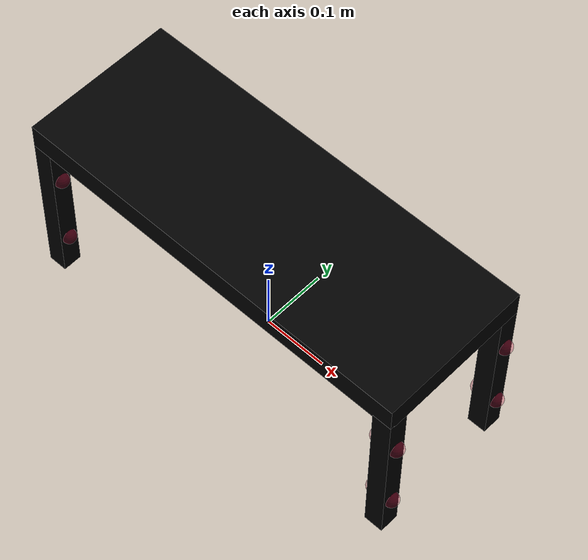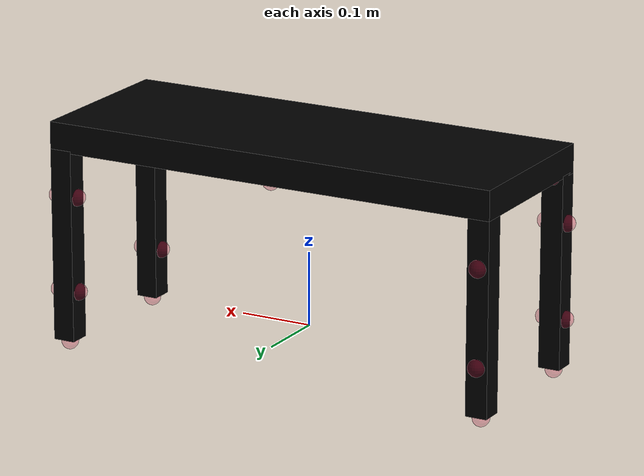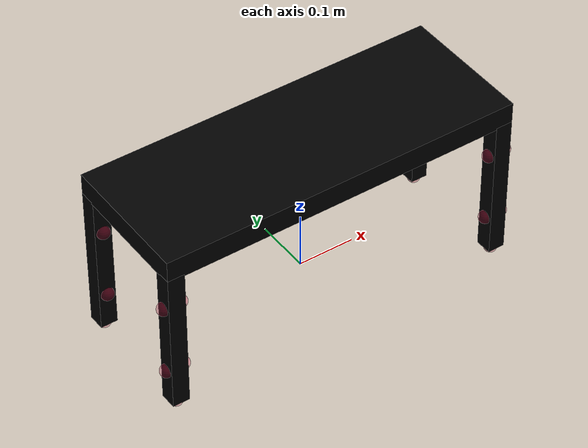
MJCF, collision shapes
<mujoco model="table_lack_0825">
  <custom>
    <numeric data="0.0   0.21 0.01497 0.5 -0.5 0.5 -0.5" name="0_part0_initpos" />
    <numeric data="-0.37 0.31 0.01497 0.499854 0.499854 0.500146 0.500146" name="1_part1_initpos" />
    <numeric data="-0.37 0.21 0.01497 0.500129 0.500129 0.499871 0.499871" name="2_part2_initpos" />
    <numeric data="0.0   0.31 0.01497 0.5 -0.5 0.5 -0.5" name="3_part3_initpos" />
    <numeric data="-0.19 0.00  0.019527 0 1.0 0 0" name="4_part4_initpos" />
  </custom>
  <asset>
    <mesh file="table_lack_0825/leg1.stl" name="part0" scale="0.02 0.02 0.02" />
    <mesh file="table_lack_0825/leg2.stl" name="part1" scale="0.02 0.02 0.02" />
    <mesh file="table_lack_0825/leg3.stl" name="part2" scale="0.02 0.02 0.02" />
    <mesh file="table_lack_0825/leg4.stl" name="part3" scale="0.02 0.02 0.02" />
    <mesh file="table_lack_0825/table.stl" name="part4" scale="0.015 0.015 0.02" />
    <texture file="../textures/light-wood.png" name="tex-light-wood" type="2d" />
    <material name="pencil-wood" reflectance="0.5" texrepeat="20 20" texture="tex-light-wood" texuniform="true" />
  </asset>
  <equality>
    <weld active="false" body1="0_part0" body2="4_part4" solimp="1 1 0.5" solref="0.01 0.3" />
    <weld active="false" body1="2_part2" body2="4_part4" solimp="1 1 0.5" solref="0.01 0.3" />
    <weld active="false" body1="3_part3" body2="4_part4" solimp="1 1 0.5" solref="0.01 0.3" />
    <weld active="false" body1="1_part1" body2="4_part4" solimp="1 1 0.5" solref="0.01 0.3" />
  </equality>
  <worldbody>
    <body name="4_part4" pos="0.0 0.0 0.2433" quat="1 0 0 0">
      <geom conaffinity="0" contype="0" density="0" material="pencil-wood" mesh="part4" name="4_part4_geom" pos="0 0 0" rgba="0.82 0.71 0.55 1" solref="0.001 1" type="mesh" />
      <geom density="50" name="noviz_collision_4_part4_0" pos="0 0 0" quat="1 0 0 0" rgba="0 0 0 0" size="0.32 0.12 0.02" solref="0.001 1" type="box" />

      <site group="0" name="table-leg,0,90,180,270,conn_site1" pos="-0.305 -0.095 -0.02" rgba="0.9019 0.0980 0.2941 0.3" size="0.0116" />
      <site group="0" name="table-leg,0,90,180,270,conn_site2" pos="-0.305 0.095 -0.02" rgba="0.9019 0.0980 0.2941 0.3" size="0.0116" />
      <site group="0" name="table-leg,0,90,180,270,conn_site3" pos="0.305 -0.095 -0.02" rgba="0.9019 0.0980 0.2941 0.3" size="0.0116" />
      <site group="0" name="table-leg,0,90,180,270,conn_site4" pos="0.305 0.095 -0.02" rgba="0.9019 0.0980 0.2941 0.3" size="0.0116" />
      <site group="0" name="table-leg,0,90,180,270,conn_site5_fake1" pos="0.0 -0.1 -0.02" rgba="0.9019 0.0980 0.2941 0.3" size="0.0116" />
      <site group="0" name="table-leg,0,90,180,270,conn_site6_fake2" pos="0.0 0.1 -0.02" rgba="0.9019 0.0980 0.2941 0.3" size="0.0116" />

      <site name="4_part4_corner_site1" pos="-0.385 -0.140 -0.023" rgba="0 0 0 0" size="0.005" />
      <site name="4_part4_corner_site2" pos="-0.385 0.140 -0.023" rgba="0 0 0 0" size="0.005" />
      <site name="4_part4_corner_site3" pos="0.385 -0.140 -0.023" rgba="0 0 0 0" size="0.005" />
      <site name="4_part4_corner_site4" pos="0.385 0.140 -0.023" rgba="0 0 0 0" size="0.005" />
      <site name="4_part4_corner_site5" pos="-0.385 -0.140 0.0233" rgba="0 0 0 0" size="0.005" />
      <site name="4_part4_corner_site6" pos="-0.385 0.140 0.0233" rgba="0 0 0 0" size="0.005" />
      <site name="4_part4_corner_site7" pos="0.385 -0.140 0.0233" rgba="0 0 0 0" size="0.005" />
      <site name="4_part4_corner_site8" pos="0.385 0.140 0.0233" rgba="0 0 0 0" size="0.005" />
      <site name="4_part4_bottom_site" pos="0.0 0.0 -0.0" rgba="0 0 0 0" size="0.0066" />
      <site name="4_part4_top_site" pos="0.0 0.0 0.02" rgba="0 0 0 0" size="0.0066" />
      <site name="4_part4_horizontal_radius_site" pos="0.0 0.0 0.0" rgba="0 0 0 0" size="0.18" />
    </body>
    <body name="0_part0" pos="-0.305 -0.105 0.095">
      <geom density="5" name="noviz_collision_0_part0_0" pos="0 0 0" quat="1 0 0 0" rgba="0 0 0 0" size="0.015 0.015 0.13125" solref="0.001 1" type="box" />
      <geom conaffinity="0" contype="0" density="0" material="pencil-wood" mesh="part0" name="0_part0_mesh" pos="0 0 0" rgba="0.82 0.71 0.55 1" solref="0.001 1" type="mesh" />
      <site group="1" name="0_part0_ltgt_site0" pos="-0.02 0 0" rgba="0 0 0 0" size="0.01 0.01 0.01" type="sphere" />
      <site group="1" name="0_part0_rtgt_site0" pos="0.02 0 0" rgba="0 0 0 0" size="0.01 0.01 0.01" type="sphere" />
      <site group="0" name="leg-table,0,90,180,270,conn_site1" pos="0.0 0.0 0.1355" rgba="0.9019 0.0980 0.2941 0.3" size="0.0116" />
      <site group="0" name="leg-table,0,90,180,270,conn_site1_fake1" pos="0.0 0.0 -0.1355" rgba="0.9019 0.0980 0.2941 0.3" size="0.0116" />
      <site group="0" name="leg-table,0,90,180,270,conn_site1_fake2" pos="0.015 0.0 -0.065" rgba="0.9019 0.0980 0.2941 0.3" size="0.0116" />
      <site group="0" name="leg-table,0,90,180,270,conn_site1_fake3" pos="0.015 0.0 0.065" rgba="0.9019 0.0980 0.2941 0.3" size="0.0116" />
      <site group="0" name="leg-table,0,90,180,270,conn_site1_fake4" pos="-0.015 0.0 -0.065" rgba="0.9019 0.0980 0.2941 0.3" size="0.0116" />
      <site group="0" name="leg-table,0,90,180,270,conn_site1_fake5" pos="-0.015 0.0 0.065" rgba="0.9019 0.0980 0.2941 0.3" size="0.0116" />

      <site name="0_part0_bottom_site" pos="0.0 0.0 -0.133" rgba="0 0 0 0" size="0.0116" />
      <site name="0_part0_top_site" pos="0.0 0.0 0.1333" rgba="0 0 0 0" size="0.0116" />
      <site name="0_part0_corner_site1" pos="0.02 0.02 -0.133" rgba="0 0 0 0" size="0.005" />
      <site name="0_part0_corner_site2" pos="0.02 -0.02 -0.133" rgba="0 0 0 0" size="0.005" />
      <site name="0_part0_corner_site3" pos="-0.02 0.02 -0.133" rgba="0 0 0 0" size="0.005" />
      <site name="0_part0_corner_site4" pos="-0.02 -0.02 -0.133" rgba="0 0 0 0" size="0.005" />
      <site name="0_part0_corner_site5" pos="0.02 0.02 0.1333" rgba="0 0 0 0" size="0.005" />
      <site name="0_part0_corner_site6" pos="0.02 -0.02 0.1333" rgba="0 0 0 0" size="0.005" />
      <site name="0_part0_corner_site7" pos="-0.02 0.02 0.1333" rgba="0 0 0 0" size="0.005" />
      <site name="0_part0_corner_site8" pos="-0.02 -0.02 0.1333" rgba="0 0 0 0" size="0.005" />
      <site name="0_part0_horizontal_radius_site" pos="0.0 0.0 0.0" rgba="0 0 0 0" size="0.02" />
    </body>
    <body name="1_part1" pos="-0.305 0.105 0.095" quat="-0.7 0 0 0.7">
      <geom conaffinity="0" contype="0" density="0" material="pencil-wood" mesh="part1" name="1_part1_mesh" pos="0 0 0" rgba="0.82 0.71 0.55 1" solref="0.001 1" type="mesh" />
      <geom density="5" name="noviz_collision_1_part1_0" pos="0 0 0" quat="1 0 0 0" rgba="0 0 0 0" size="0.015 0.015 0.13125" solref="0.001 1" type="box" />
      <site group="1" name="1_part1_ltgt_site0" pos="-0.02 0 0" rgba="0 0 0 0" size="0.01 0.01 0.01" type="sphere" />
      <site group="1" name="1_part1_rtgt_site0" pos="0.02 0 0" rgba="0 0 0 0" size="0.01 0.01 0.01" type="sphere" />
      <site group="0" name="leg-table,0,90,180,270,conn_site2" pos="0.0 0.0 0.13125" rgba="0.9019 0.0980 0.2941 0.3" size="0.0116" />
      <site group="0" name="leg-table,0,90,180,270,conn_site2_fake1" pos="0.0 0.0 -0.1355" rgba="0.9019 0.0980 0.2941 0.3" size="0.0116" />
      <site group="0" name="leg-table,0,90,180,270,conn_site2_fake2" pos="0.015 0.0 -0.065" rgba="0.9019 0.0980 0.2941 0.3" size="0.0116" />
      <site group="0" name="leg-table,0,90,180,270,conn_site2_fake3" pos="0.015 0.0 0.065" rgba="0.9019 0.0980 0.2941 0.3" size="0.0116" />
      <site group="0" name="leg-table,0,90,180,270,conn_site2_fake4" pos="-0.015 0.0 -0.065" rgba="0.9019 0.0980 0.2941 0.3" size="0.0116" />
      <site group="0" name="leg-table,0,90,180,270,conn_site2_fake5" pos="-0.015 0.0 0.065" rgba="0.9019 0.0980 0.2941 0.3" size="0.0116" />
      <site name="1_part1_bottom_site" pos="0.0 0.0 -0.133" rgba="0 0 0 0" size="0.0116" />
      <site name="1_part1_top_site" pos="0.0 0.0 0.1333" rgba="0 0 0 0" size="0.0116" />
      <site name="1_part1_corner_site1" pos="0.02 0.02 -0.133" rgba="0 0 0 0" size="0.005" />
      <site name="1_part1_corner_site2" pos="0.02 -0.02 -0.133" rgba="0 0 0 0" size="0.005" />
      <site name="1_part1_corner_site3" pos="-0.02 0.02 -0.133" rgba="0 0 0 0" size="0.005" />
      <site name="1_part1_corner_site4" pos="-0.02 -0.02 -0.133" rgba="0 0 0 0" size="0.005" />
      <site name="1_part1_corner_site5" pos="0.02 0.02 0.1333" rgba="0 0 0 0" size="0.005" />
      <site name="1_part1_corner_site6" pos="0.02 -0.02 0.1333" rgba="0 0 0 0" size="0.005" />
      <site name="1_part1_corner_site7" pos="-0.02 0.02 0.1333" rgba="0 0 0 0" size="0.005" />
      <site name="1_part1_corner_site8" pos="-0.02 -0.02 0.1333" rgba="0 0 0 0" size="0.005" />
      <site name="1_part1_horizontal_radius_site" pos="0.0 0.0 0.0" rgba="0 0 0 0" size="0.02" />
    </body>
    <body name="2_part2" pos="0.305 -0.105 0.095" quat="1 0 0 0">
      <geom conaffinity="0" contype="0" density="0" material="pencil-wood" mesh="part2" name="2_part2_mesh" pos="0 0 0" rgba="0.82 0.71 0.55 1" solref="0.001 1" type="mesh" />
      <geom density="5" name="noviz_collision_2_part2_0" pos="0 0 0" quat="1 0 0 0" rgba="0 0 0 0" size="0.015 0.015 0.13125" solref="0.001 1" type="box" />
      <site group="1" name="2_part2_rtgt_site0" pos="-0.02 0 0" rgba="0 0 0 0" size="0.01 0.01 0.01" type="sphere" />
      <site group="1" name="2_part2_ltgt_site0" pos="0.02 0 0" rgba="0 0 0 0" size="0.01 0.01 0.01" type="sphere" />
      <site group="0" name="leg-table,0,90,180,270,conn_site3" pos="0.0 0.0 0.13125" rgba="0.9019 0.0980 0.2941 0.3" size="0.0116" />
      <site group="0" name="leg-table,0,90,180,270,conn_site3_fake1" pos="0.0 0.0 -0.1355" rgba="0.9019 0.0980 0.2941 0.3" size="0.0116" />
      <site group="0" name="leg-table,0,90,180,270,conn_site3_fake2" pos="0.015 0.0 -0.065" rgba="0.9019 0.0980 0.2941 0.3" size="0.0116" />
      <site group="0" name="leg-table,0,90,180,270,conn_site3_fake3" pos="0.015 0.0 0.065" rgba="0.9019 0.0980 0.2941 0.3" size="0.0116" />
      <site group="0" name="leg-table,0,90,180,270,conn_site3_fake4" pos="-0.015 0.0 -0.065" rgba="0.9019 0.0980 0.2941 0.3" size="0.0116" />
      <site group="0" name="leg-table,0,90,180,270,conn_site3_fake5" pos="-0.015 0.0 0.065" rgba="0.9019 0.0980 0.2941 0.3" size="0.0116" />
      <site name="2_part2_bottom_site" pos="0.0 0.0 -0.133" rgba="0 0 0 0" size="0.0116" />
      <site name="2_part2_top_site" pos="0.0 0.0 0.1333" rgba="0 0 0 0" size="0.0116" />
      <site name="2_part2_corner_site1" pos="0.02 0.02 -0.133" rgba="0 0 0 0" size="0.005" />
      <site name="2_part2_corner_site2" pos="0.02 -0.02 -0.133" rgba="0 0 0 0" size="0.005" />
      <site name="2_part2_corner_site3" pos="-0.02 0.02 -0.133" rgba="0 0 0 0" size="0.005" />
      <site name="2_part2_corner_site4" pos="-0.02 -0.02 -0.133" rgba="0 0 0 0" size="0.005" />
      <site name="2_part2_corner_site5" pos="0.02 0.02 0.1333" rgba="0 0 0 0" size="0.005" />
      <site name="2_part2_corner_site6" pos="0.02 -0.02 0.1333" rgba="0 0 0 0" size="0.005" />
      <site name="2_part2_corner_site7" pos="-0.02 0.02 0.1333" rgba="0 0 0 0" size="0.005" />
      <site name="2_part2_corner_site8" pos="-0.02 -0.02 0.1333" rgba="0 0 0 0" size="0.005" />
      <site name="2_part2_horizontal_radius_site" pos="0.0 0.0 0.0" rgba="0 0 0 0" size="0.02" />
    </body>
    <body name="3_part3" pos="0.305 0.105 0.095" quat="1 0 0 0">
      <geom conaffinity="0" contype="0" density="0" material="pencil-wood" mesh="part3" name="3_part3_mesh" pos="0 0 0" rgba="0.82 0.71 0.55 1" solref="0.001 1" type="mesh" />
      <geom density="5" name="noviz_collision_3_part3_0" pos="0 0 0" quat="1 0 0 0" rgba="0 0 0 0" size="0.015 0.015 0.13125" solref="0.001 1" type="box" />
      <site group="1" name="3_part3_ltgt_site0" pos="-0.02 0 0" rgba="0 0 0 0" size="0.01 0.01 0.01" type="sphere" />
      <site group="1" name="3_part3_rtgt_site0" pos="0.02 0 0" rgba="0 0 0 0" size="0.01 0.01 0.01" type="sphere" />
      <site group="0" name="leg-table,0,90,180,270,conn_site4" pos="0.0 0.0 0.13125" rgba="0.9019 0.0980 0.2941 0.3" size="0.0116" />
      <site group="0" name="leg-table,0,90,180,270,conn_site4_fake1" pos="0.0 0.0 -0.1355" rgba="0.9019 0.0980 0.2941 0.3" size="0.0116" />
      <site group="0" name="leg-table,0,90,180,270,conn_site4_fake2" pos="0.015 0.0 -0.065" rgba="0.9019 0.0980 0.2941 0.3" size="0.0116" />
      <site group="0" name="leg-table,0,90,180,270,conn_site4_fake3" pos="0.015 0.0 0.065" rgba="0.9019 0.0980 0.2941 0.3" size="0.0116" />
      <site group="0" name="leg-table,0,90,180,270,conn_site4_fake4" pos="-0.015 0.0 -0.065" rgba="0.9019 0.0980 0.2941 0.3" size="0.0116" />
      <site group="0" name="leg-table,0,90,180,270,conn_site4_fake5" pos="-0.015 0.0 0.065" rgba="0.9019 0.0980 0.2941 0.3" size="0.0116" />
      <site name="3_part3_bottom_site" pos="0.0 0.0 -0.133" rgba="0 0 0 0" size="0.0116" />
      <site name="3_part3_top_site" pos="0.0 0.0 0.1333" rgba="0 0 0 0" size="0.0116" />
      <site name="3_part3_corner_site1" pos="0.02 0.02 -0.133" rgba="0 0 0 0" size="0.005" />
      <site name="3_part3_corner_site2" pos="0.02 -0.02 -0.133" rgba="0 0 0 0" size="0.005" />
      <site name="3_part3_corner_site3" pos="-0.02 0.02 -0.133" rgba="0 0 0 0" size="0.005" />
      <site name="3_part3_corner_site4" pos="-0.02 -0.02 -0.133" rgba="0 0 0 0" size="0.005" />
      <site name="3_part3_corner_site5" pos="0.02 0.02 0.1333" rgba="0 0 0 0" size="0.005" />
      <site name="3_part3_corner_site6" pos="0.02 -0.02 0.1333" rgba="0 0 0 0" size="0.005" />
      <site name="3_part3_corner_site7" pos="-0.02 0.02 0.1333" rgba="0 0 0 0" size="0.005" />
      <site name="3_part3_corner_site8" pos="-0.02 -0.02 0.1333" rgba="0 0 0 0" size="0.005" />
      <site name="3_part3_horizontal_radius_site" pos="0.0 0.0 0.0" rgba="0 0 0 0" size="0.02" />
    </body>

  </worldbody>
<actuator /><sensor /><contact /><default /></mujoco>
